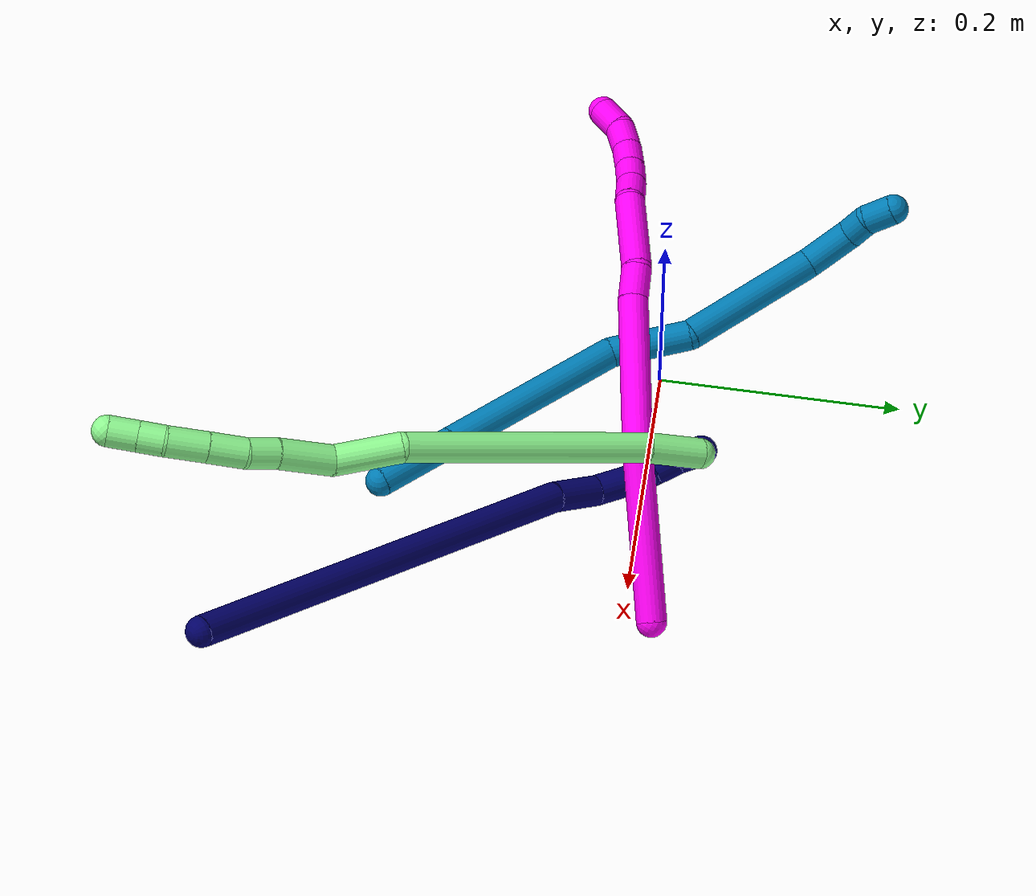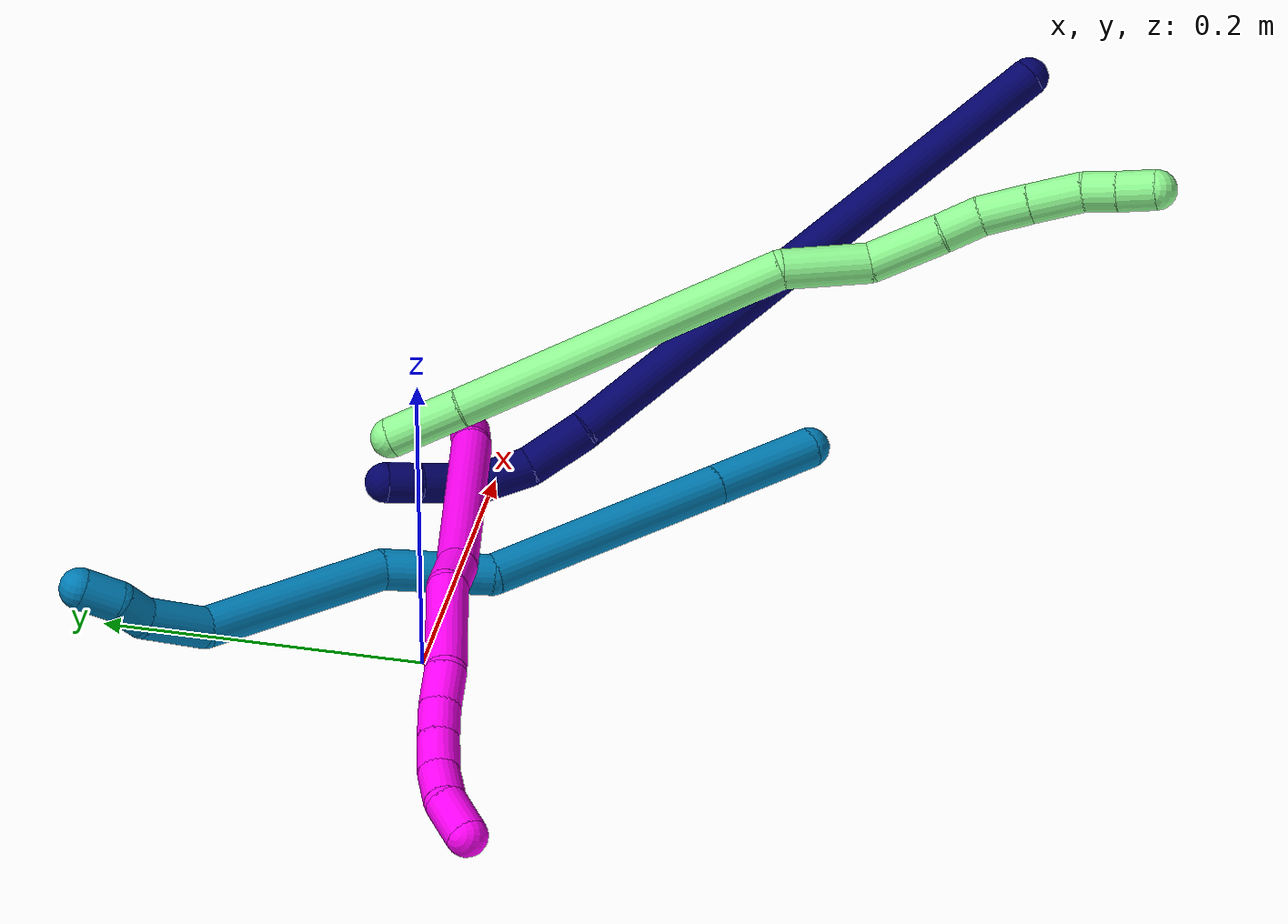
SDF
<sdf version="1.7">
 <world name="default">
  <model name="7">
   <static>0</static>
   <link name="7">
    <collision name="collision-cylinder-e_1_1_4">
     <pose>-0.009765 0.006613 -0.181981 -3.10527 -0.053572 1.95012</pose>
     <geometry><cylinder><radius>0.0125</radius><length>0.364726</length></cylinder></geometry>
     <surface>
      <friction><ode><mu>1.16</mu><mu2>1.16</mu2><slip1>0</slip1><slip2>0</slip2></ode></friction>
      <contact><ode><kp>1e+06</kp><kd>1</kd><max_vel>0</max_vel><min_depth>0.001</min_depth></ode></contact>
     </surface>
    </collision>
    <visual name="visual-cylinder-e_1_1_4">
     <pose>-0.009765 0.006613 -0.181981 -3.10527 -0.053572 1.95012</pose>
     <geometry><cylinder><radius>0.0125</radius><length>0.364726</length></cylinder></geometry>
     <material><ambient>0.003922 0 0.403922 1</ambient></material>
    </visual>
    <collision name="collision-cylinder-e_2_4_5">
     <pose>-0.019445 0.017372 -0.384176 -2.93925 0.004092 -0.040301</pose>
     <geometry><cylinder><radius>0.0125</radius><length>0.041269</length></cylinder></geometry>
     <surface>
      <friction><ode><mu>1.16</mu><mu2>1.16</mu2><slip1>0</slip1><slip2>0</slip2></ode></friction>
      <contact><ode><kp>1e+06</kp><kd>1</kd><max_vel>0</max_vel><min_depth>0.001</min_depth></ode></contact>
     </surface>
    </collision>
    <visual name="visual-cylinder-e_2_4_5">
     <pose>-0.019445 0.017372 -0.384176 -2.93925 0.004092 -0.040301</pose>
     <geometry><cylinder><radius>0.0125</radius><length>0.041269</length></cylinder></geometry>
     <material><ambient>0.003922 0 0.403922 1</ambient></material>
    </visual>
    <collision name="collision-cylinder-e_3_5_6">
     <pose>-0.023936 0.025832 -0.418984 -2.85425 -0.29203 1.58722</pose>
     <geometry><cylinder><radius>0.0125</radius><length>0.031783</length></cylinder></geometry>
     <surface>
      <friction><ode><mu>1.16</mu><mu2>1.16</mu2><slip1>0</slip1><slip2>0</slip2></ode></friction>
      <contact><ode><kp>1e+06</kp><kd>1</kd><max_vel>0</max_vel><min_depth>0.001</min_depth></ode></contact>
     </surface>
    </collision>
    <visual name="visual-cylinder-e_3_5_6">
     <pose>-0.023936 0.025832 -0.418984 -2.85425 -0.29203 1.58722</pose>
     <geometry><cylinder><radius>0.0125</radius><length>0.031783</length></cylinder></geometry>
     <material><ambient>0.003922 0 0.403922 1</ambient></material>
    </visual>
    <collision name="collision-cylinder-e_4_6_7">
     <pose>-0.03447 0.033646 -0.441548 -2.72761 -0.600308 1.94929</pose>
     <geometry><cylinder><radius>0.0125</radius><length>0.021097</length></cylinder></geometry>
     <surface>
      <friction><ode><mu>1.16</mu><mu2>1.16</mu2><slip1>0</slip1><slip2>0</slip2></ode></friction>
      <contact><ode><kp>1e+06</kp><kd>1</kd><max_vel>0</max_vel><min_depth>0.001</min_depth></ode></contact>
     </surface>
    </collision>
    <visual name="visual-cylinder-e_4_6_7">
     <pose>-0.03447 0.033646 -0.441548 -2.72761 -0.600308 1.94929</pose>
     <geometry><cylinder><radius>0.0125</radius><length>0.021097</length></cylinder></geometry>
     <material><ambient>0.003922 0 0.403922 1</ambient></material>
    </visual>
    <collision name="collision-cylinder-e_5_7_8">
     <pose>-0.04657 0.040112 -0.45691 -2.76021 -0.656779 2.11067</pose>
     <geometry><cylinder><radius>0.0125</radius><length>0.020115</length></cylinder></geometry>
     <surface>
      <friction><ode><mu>1.16</mu><mu2>1.16</mu2><slip1>0</slip1><slip2>0</slip2></ode></friction>
      <contact><ode><kp>1e+06</kp><kd>1</kd><max_vel>0</max_vel><min_depth>0.001</min_depth></ode></contact>
     </surface>
    </collision>
    <visual name="visual-cylinder-e_5_7_8">
     <pose>-0.04657 0.040112 -0.45691 -2.76021 -0.656779 2.11067</pose>
     <geometry><cylinder><radius>0.0125</radius><length>0.020115</length></cylinder></geometry>
     <material><ambient>0.003922 0 0.403922 1</ambient></material>
    </visual>
    <collision name="collision-cylinder-e_6_8_2">
     <pose>-0.058392 0.047277 -0.472077 -2.64627 -0.571427 1.72016</pose>
     <geometry><cylinder><radius>0.0125</radius><length>0.02101</length></cylinder></geometry>
     <surface>
      <friction><ode><mu>1.16</mu><mu2>1.16</mu2><slip1>0</slip1><slip2>0</slip2></ode></friction>
      <contact><ode><kp>1e+06</kp><kd>1</kd><max_vel>0</max_vel><min_depth>0.001</min_depth></ode></contact>
     </surface>
    </collision>
    <visual name="visual-cylinder-e_6_8_2">
     <pose>-0.058392 0.047277 -0.472077 -2.64627 -0.571427 1.72016</pose>
     <geometry><cylinder><radius>0.0125</radius><length>0.02101</length></cylinder></geometry>
     <material><ambient>0.003922 0 0.403922 1</ambient></material>
    </visual>
    <collision name="collision-sphere-2">
     <pose>-0.064073 0.051477 -0.479851 0 -0 0</pose>
     <geometry><sphere><radius>0.0125</radius></sphere></geometry>
     <surface>
      <friction><ode><mu>1.16</mu><mu2>1.16</mu2><slip1>0</slip1><slip2>0</slip2></ode></friction>
      <contact><ode><kp>1e+06</kp><kd>1</kd><max_vel>0</max_vel><min_depth>0.001</min_depth></ode></contact>
     </surface>
    </collision>
    <visual name="visual-sphere-2">
     <pose>-0.064073 0.051477 -0.479851 0 -0 0</pose>
     <geometry><sphere><radius>0.0125</radius></sphere></geometry>
     <material><ambient>0.003922 0 0.403922 1</ambient></material>
    </visual>
    <collision name="collision-sphere-4">
     <pose>-0.01953 0.013225 -0.363963 0 -0 0</pose>
     <geometry><sphere><radius>0.0125</radius></sphere></geometry>
     <surface>
      <friction><ode><mu>1.16</mu><mu2>1.16</mu2><slip1>0</slip1><slip2>0</slip2></ode></friction>
      <contact><ode><kp>1e+06</kp><kd>1</kd><max_vel>0</max_vel><min_depth>0.001</min_depth></ode></contact>
     </surface>
    </collision>
    <visual name="visual-sphere-4">
     <pose>-0.01953 0.013225 -0.363963 0 -0 0</pose>
     <geometry><sphere><radius>0.0125</radius></sphere></geometry>
     <material><ambient>0.003922 0 0.403922 1</ambient></material>
    </visual>
    <collision name="collision-sphere-1">
     <geometry><sphere><radius>0.0125</radius></sphere></geometry>
     <surface>
      <friction><ode><mu>1.16</mu><mu2>1.16</mu2><slip1>0</slip1><slip2>0</slip2></ode></friction>
      <contact><ode><kp>1e+06</kp><kd>1</kd><max_vel>0</max_vel><min_depth>0.001</min_depth></ode></contact>
     </surface>
    </collision>
    <visual name="visual-sphere-1">
     <geometry><sphere><radius>0.0125</radius></sphere></geometry>
     <material><ambient>0.003922 0 0.403922 1</ambient></material>
    </visual>
    <collision name="collision-sphere-8">
     <pose>-0.05271 0.043077 -0.464303 0 -0 0</pose>
     <geometry><sphere><radius>0.0125</radius></sphere></geometry>
     <surface>
      <friction><ode><mu>1.16</mu><mu2>1.16</mu2><slip1>0</slip1><slip2>0</slip2></ode></friction>
      <contact><ode><kp>1e+06</kp><kd>1</kd><max_vel>0</max_vel><min_depth>0.001</min_depth></ode></contact>
     </surface>
    </collision>
    <visual name="visual-sphere-8">
     <pose>-0.05271 0.043077 -0.464303 0 -0 0</pose>
     <geometry><sphere><radius>0.0125</radius></sphere></geometry>
     <material><ambient>0.003922 0 0.403922 1</ambient></material>
    </visual>
    <collision name="collision-sphere-5">
     <pose>-0.019361 0.021519 -0.404389 0 -0 0</pose>
     <geometry><sphere><radius>0.0125</radius></sphere></geometry>
     <surface>
      <friction><ode><mu>1.16</mu><mu2>1.16</mu2><slip1>0</slip1><slip2>0</slip2></ode></friction>
      <contact><ode><kp>1e+06</kp><kd>1</kd><max_vel>0</max_vel><min_depth>0.001</min_depth></ode></contact>
     </surface>
    </collision>
    <visual name="visual-sphere-5">
     <pose>-0.019361 0.021519 -0.404389 0 -0 0</pose>
     <geometry><sphere><radius>0.0125</radius></sphere></geometry>
     <material><ambient>0.003922 0 0.403922 1</ambient></material>
    </visual>
    <collision name="collision-sphere-6">
     <pose>-0.028511 0.030145 -0.433579 0 -0 0</pose>
     <geometry><sphere><radius>0.0125</radius></sphere></geometry>
     <surface>
      <friction><ode><mu>1.16</mu><mu2>1.16</mu2><slip1>0</slip1><slip2>0</slip2></ode></friction>
      <contact><ode><kp>1e+06</kp><kd>1</kd><max_vel>0</max_vel><min_depth>0.001</min_depth></ode></contact>
     </surface>
    </collision>
    <visual name="visual-sphere-6">
     <pose>-0.028511 0.030145 -0.433579 0 -0 0</pose>
     <geometry><sphere><radius>0.0125</radius></sphere></geometry>
     <material><ambient>0.003922 0 0.403922 1</ambient></material>
    </visual>
    <collision name="collision-sphere-7">
     <pose>-0.040429 0.037148 -0.449517 0 -0 0</pose>
     <geometry><sphere><radius>0.0125</radius></sphere></geometry>
     <surface>
      <friction><ode><mu>1.16</mu><mu2>1.16</mu2><slip1>0</slip1><slip2>0</slip2></ode></friction>
      <contact><ode><kp>1e+06</kp><kd>1</kd><max_vel>0</max_vel><min_depth>0.001</min_depth></ode></contact>
     </surface>
    </collision>
    <visual name="visual-sphere-7">
     <pose>-0.040429 0.037148 -0.449517 0 -0 0</pose>
     <geometry><sphere><radius>0.0125</radius></sphere></geometry>
     <material><ambient>0.003922 0 0.403922 1</ambient></material>
    </visual>
    <inertial>
     <pose>-0.016031 0.012919 -0.247938 0 -0 0</pose>
     <mass>0.5</mass>
     <inertia>
      <ixx>0.002271</ixx>
      <ixy>0</ixy>
      <ixz>0</ixz>
      <iyy>0.005279</iyy>
      <iyz>0</iyz>
      <izz>3.2e-05</izz>
     </inertia>
    </inertial>
   </link>
   <pose>0.401717 -0.301696 0.215651 0.067528 1.10699 -0.670685</pose>
  </model>
  <model name="9">
   <static>0</static>
   <link name="9">
    <collision name="collision-cylinder-e_1_1_4">
     <pose>-0.023969 0.023732 -0.006398 -1.83414 -0.772826 0.976412</pose>
     <geometry><cylinder><radius>0.0125</radius><length>0.068663</length></cylinder></geometry>
     <surface>
      <friction><ode><mu>1.16</mu><mu2>1.16</mu2><slip1>0</slip1><slip2>0</slip2></ode></friction>
      <contact><ode><kp>1e+06</kp><kd>1</kd><max_vel>0</max_vel><min_depth>0.001</min_depth></ode></contact>
     </surface>
    </collision>
    <visual name="visual-cylinder-e_1_1_4">
     <pose>-0.023969 0.023732 -0.006398 -1.83414 -0.772826 0.976412</pose>
     <geometry><cylinder><radius>0.0125</radius><length>0.068663</length></cylinder></geometry>
     <material><ambient>0 0.490196 0.709804 1</ambient></material>
    </visual>
    <collision name="collision-cylinder-e_2_4_5">
     <pose>-0.103124 0.102087 -0.027537 -1.83438 -0.772953 0.976772</pose>
     <geometry><cylinder><radius>0.0125</radius><length>0.158069</length></cylinder></geometry>
     <surface>
      <friction><ode><mu>1.16</mu><mu2>1.16</mu2><slip1>0</slip1><slip2>0</slip2></ode></friction>
      <contact><ode><kp>1e+06</kp><kd>1</kd><max_vel>0</max_vel><min_depth>0.001</min_depth></ode></contact>
     </surface>
    </collision>
    <visual name="visual-cylinder-e_2_4_5">
     <pose>-0.103124 0.102087 -0.027537 -1.83438 -0.772953 0.976772</pose>
     <geometry><cylinder><radius>0.0125</radius><length>0.158069</length></cylinder></geometry>
     <material><ambient>0 0.490196 0.709804 1</ambient></material>
    </visual>
    <collision name="collision-cylinder-e_3_5_6">
     <pose>-0.169786 0.188168 -0.042179 -1.56769 -0.349818 0.348754</pose>
     <geometry><cylinder><radius>0.0125</radius><length>0.066972</length></cylinder></geometry>
     <surface>
      <friction><ode><mu>1.16</mu><mu2>1.16</mu2><slip1>0</slip1><slip2>0</slip2></ode></friction>
      <contact><ode><kp>1e+06</kp><kd>1</kd><max_vel>0</max_vel><min_depth>0.001</min_depth></ode></contact>
     </surface>
    </collision>
    <visual name="visual-cylinder-e_3_5_6">
     <pose>-0.169786 0.188168 -0.042179 -1.56769 -0.349818 0.348754</pose>
     <geometry><cylinder><radius>0.0125</radius><length>0.066972</length></cylinder></geometry>
     <material><ambient>0 0.490196 0.709804 1</ambient></material>
    </visual>
    <collision name="collision-cylinder-e_4_6_7">
     <pose>-0.223466 0.261632 -0.049074 -1.73574 -0.780895 0.90437</pose>
     <geometry><cylinder><radius>0.0125</radius><length>0.119909</length></cylinder></geometry>
     <surface>
      <friction><ode><mu>1.16</mu><mu2>1.16</mu2><slip1>0</slip1><slip2>0</slip2></ode></friction>
      <contact><ode><kp>1e+06</kp><kd>1</kd><max_vel>0</max_vel><min_depth>0.001</min_depth></ode></contact>
     </surface>
    </collision>
    <visual name="visual-cylinder-e_4_6_7">
     <pose>-0.223466 0.261632 -0.049074 -1.73574 -0.780895 0.90437</pose>
     <geometry><cylinder><radius>0.0125</radius><length>0.119909</length></cylinder></geometry>
     <material><ambient>0 0.490196 0.709804 1</ambient></material>
    </visual>
    <collision name="collision-cylinder-e_5_7_8">
     <pose>-0.277711 0.319695 -0.049641 -1.19013 -0.608233 0.418677</pose>
     <geometry><cylinder><radius>0.0125</radius><length>0.042148</length></cylinder></geometry>
     <surface>
      <friction><ode><mu>1.16</mu><mu2>1.16</mu2><slip1>0</slip1><slip2>0</slip2></ode></friction>
      <contact><ode><kp>1e+06</kp><kd>1</kd><max_vel>0</max_vel><min_depth>0.001</min_depth></ode></contact>
     </surface>
    </collision>
    <visual name="visual-cylinder-e_5_7_8">
     <pose>-0.277711 0.319695 -0.049641 -1.19013 -0.608233 0.418677</pose>
     <geometry><cylinder><radius>0.0125</radius><length>0.042148</length></cylinder></geometry>
     <material><ambient>0 0.490196 0.709804 1</ambient></material>
    </visual>
    <collision name="collision-cylinder-e_6_8_9">
     <pose>-0.293532 0.342733 -0.037122 -0.853208 -0.387229 0.177765</pose>
     <geometry><cylinder><radius>0.0125</radius><length>0.020014</length></cylinder></geometry>
     <surface>
      <friction><ode><mu>1.16</mu><mu2>1.16</mu2><slip1>0</slip1><slip2>0</slip2></ode></friction>
      <contact><ode><kp>1e+06</kp><kd>1</kd><max_vel>0</max_vel><min_depth>0.001</min_depth></ode></contact>
     </surface>
    </collision>
    <visual name="visual-cylinder-e_6_8_9">
     <pose>-0.293532 0.342733 -0.037122 -0.853208 -0.387229 0.177765</pose>
     <geometry><cylinder><radius>0.0125</radius><length>0.020014</length></cylinder></geometry>
     <material><ambient>0 0.490196 0.709804 1</ambient></material>
    </visual>
    <collision name="collision-cylinder-e_7_9_2">
     <pose>-0.301159 0.360544 -0.027205 -1.23139 -0.323285 0.2297</pose>
     <geometry><cylinder><radius>0.0125</radius><length>0.024225</length></cylinder></geometry>
     <surface>
      <friction><ode><mu>1.16</mu><mu2>1.16</mu2><slip1>0</slip1><slip2>0</slip2></ode></friction>
      <contact><ode><kp>1e+06</kp><kd>1</kd><max_vel>0</max_vel><min_depth>0.001</min_depth></ode></contact>
     </surface>
    </collision>
    <visual name="visual-cylinder-e_7_9_2">
     <pose>-0.301159 0.360544 -0.027205 -1.23139 -0.323285 0.2297</pose>
     <geometry><cylinder><radius>0.0125</radius><length>0.024225</length></cylinder></geometry>
     <material><ambient>0 0.490196 0.709804 1</ambient></material>
    </visual>
    <collision name="collision-sphere-2">
     <pose>-0.305007 0.371374 -0.023382 0 -0 0</pose>
     <geometry><sphere><radius>0.0125</radius></sphere></geometry>
     <surface>
      <friction><ode><mu>1.16</mu><mu2>1.16</mu2><slip1>0</slip1><slip2>0</slip2></ode></friction>
      <contact><ode><kp>1e+06</kp><kd>1</kd><max_vel>0</max_vel><min_depth>0.001</min_depth></ode></contact>
     </surface>
    </collision>
    <visual name="visual-sphere-2">
     <pose>-0.305007 0.371374 -0.023382 0 -0 0</pose>
     <geometry><sphere><radius>0.0125</radius></sphere></geometry>
     <material><ambient>0 0.490196 0.709804 1</ambient></material>
    </visual>
    <collision name="collision-sphere-9">
     <pose>-0.297311 0.349714 -0.031029 0 -0 0</pose>
     <geometry><sphere><radius>0.0125</radius></sphere></geometry>
     <surface>
      <friction><ode><mu>1.16</mu><mu2>1.16</mu2><slip1>0</slip1><slip2>0</slip2></ode></friction>
      <contact><ode><kp>1e+06</kp><kd>1</kd><max_vel>0</max_vel><min_depth>0.001</min_depth></ode></contact>
     </surface>
    </collision>
    <visual name="visual-sphere-9">
     <pose>-0.297311 0.349714 -0.031029 0 -0 0</pose>
     <geometry><sphere><radius>0.0125</radius></sphere></geometry>
     <material><ambient>0 0.490196 0.709804 1</ambient></material>
    </visual>
    <collision name="collision-sphere-4">
     <pose>-0.047938 0.047464 -0.012796 0 -0 0</pose>
     <geometry><sphere><radius>0.0125</radius></sphere></geometry>
     <surface>
      <friction><ode><mu>1.16</mu><mu2>1.16</mu2><slip1>0</slip1><slip2>0</slip2></ode></friction>
      <contact><ode><kp>1e+06</kp><kd>1</kd><max_vel>0</max_vel><min_depth>0.001</min_depth></ode></contact>
     </surface>
    </collision>
    <visual name="visual-sphere-4">
     <pose>-0.047938 0.047464 -0.012796 0 -0 0</pose>
     <geometry><sphere><radius>0.0125</radius></sphere></geometry>
     <material><ambient>0 0.490196 0.709804 1</ambient></material>
    </visual>
    <collision name="collision-sphere-1">
     <geometry><sphere><radius>0.0125</radius></sphere></geometry>
     <surface>
      <friction><ode><mu>1.16</mu><mu2>1.16</mu2><slip1>0</slip1><slip2>0</slip2></ode></friction>
      <contact><ode><kp>1e+06</kp><kd>1</kd><max_vel>0</max_vel><min_depth>0.001</min_depth></ode></contact>
     </surface>
    </collision>
    <visual name="visual-sphere-1">
     <geometry><sphere><radius>0.0125</radius></sphere></geometry>
     <material><ambient>0 0.490196 0.709804 1</ambient></material>
    </visual>
    <collision name="collision-sphere-8">
     <pose>-0.289753 0.335752 -0.043215 0 -0 0</pose>
     <geometry><sphere><radius>0.0125</radius></sphere></geometry>
     <surface>
      <friction><ode><mu>1.16</mu><mu2>1.16</mu2><slip1>0</slip1><slip2>0</slip2></ode></friction>
      <contact><ode><kp>1e+06</kp><kd>1</kd><max_vel>0</max_vel><min_depth>0.001</min_depth></ode></contact>
     </surface>
    </collision>
    <visual name="visual-sphere-8">
     <pose>-0.289753 0.335752 -0.043215 0 -0 0</pose>
     <geometry><sphere><radius>0.0125</radius></sphere></geometry>
     <material><ambient>0 0.490196 0.709804 1</ambient></material>
    </visual>
    <collision name="collision-sphere-5">
     <pose>-0.15831 0.15671 -0.042277 0 -0 0</pose>
     <geometry><sphere><radius>0.0125</radius></sphere></geometry>
     <surface>
      <friction><ode><mu>1.16</mu><mu2>1.16</mu2><slip1>0</slip1><slip2>0</slip2></ode></friction>
      <contact><ode><kp>1e+06</kp><kd>1</kd><max_vel>0</max_vel><min_depth>0.001</min_depth></ode></contact>
     </surface>
    </collision>
    <visual name="visual-sphere-5">
     <pose>-0.15831 0.15671 -0.042277 0 -0 0</pose>
     <geometry><sphere><radius>0.0125</radius></sphere></geometry>
     <material><ambient>0 0.490196 0.709804 1</ambient></material>
    </visual>
    <collision name="collision-sphere-6">
     <pose>-0.181263 0.219625 -0.042082 0 -0 0</pose>
     <geometry><sphere><radius>0.0125</radius></sphere></geometry>
     <surface>
      <friction><ode><mu>1.16</mu><mu2>1.16</mu2><slip1>0</slip1><slip2>0</slip2></ode></friction>
      <contact><ode><kp>1e+06</kp><kd>1</kd><max_vel>0</max_vel><min_depth>0.001</min_depth></ode></contact>
     </surface>
    </collision>
    <visual name="visual-sphere-6">
     <pose>-0.181263 0.219625 -0.042082 0 -0 0</pose>
     <geometry><sphere><radius>0.0125</radius></sphere></geometry>
     <material><ambient>0 0.490196 0.709804 1</ambient></material>
    </visual>
    <collision name="collision-sphere-7">
     <pose>-0.265669 0.303639 -0.056067 0 -0 0</pose>
     <geometry><sphere><radius>0.0125</radius></sphere></geometry>
     <surface>
      <friction><ode><mu>1.16</mu><mu2>1.16</mu2><slip1>0</slip1><slip2>0</slip2></ode></friction>
      <contact><ode><kp>1e+06</kp><kd>1</kd><max_vel>0</max_vel><min_depth>0.001</min_depth></ode></contact>
     </surface>
    </collision>
    <visual name="visual-sphere-7">
     <pose>-0.265669 0.303639 -0.056067 0 -0 0</pose>
     <geometry><sphere><radius>0.0125</radius></sphere></geometry>
     <material><ambient>0 0.490196 0.709804 1</ambient></material>
    </visual>
    <inertial>
     <pose>-0.161976 0.181617 -0.033991 0 -0 0</pose>
     <mass>0.5</mass>
     <inertia>
      <ixx>0.000533</ixx>
      <ixy>0</ixy>
      <ixz>0</ixz>
      <iyy>0.000567</iyy>
      <iyz>0</iyz>
      <izz>-1.8e-05</izz>
     </inertia>
    </inertial>
   </link>
   <pose>0.171027 -0.205351 0.072927 0.119191 0.066629 -0.029241</pose>
  </model>
  <model name="10">
   <static>0</static>
   <link name="10">
    <collision name="collision-cylinder-e_1_1_4">
     <pose>-0.012464 -0.03831 0.055014 0.608283 -0.183831 -0.057848</pose>
     <geometry><cylinder><radius>0.0125</radius><length>0.136374</length></cylinder></geometry>
     <surface>
      <friction><ode><mu>1.16</mu><mu2>1.16</mu2><slip1>0</slip1><slip2>0</slip2></ode></friction>
      <contact><ode><kp>1e+06</kp><kd>1</kd><max_vel>0</max_vel><min_depth>0.001</min_depth></ode></contact>
     </surface>
    </collision>
    <visual name="visual-cylinder-e_1_1_4">
     <pose>-0.012464 -0.03831 0.055014 0.608283 -0.183831 -0.057848</pose>
     <geometry><cylinder><radius>0.0125</radius><length>0.136374</length></cylinder></geometry>
     <material><ambient>1 0 0.964706 1</ambient></material>
    </visual>
    <collision name="collision-cylinder-e_2_4_5">
     <pose>-0.067617 -0.105811 0.157619 0.550206 -0.652773 -0.190508</pose>
     <geometry><cylinder><radius>0.0125</radius><length>0.140562</length></cylinder></geometry>
     <surface>
      <friction><ode><mu>1.16</mu><mu2>1.16</mu2><slip1>0</slip1><slip2>0</slip2></ode></friction>
      <contact><ode><kp>1e+06</kp><kd>1</kd><max_vel>0</max_vel><min_depth>0.001</min_depth></ode></contact>
     </surface>
    </collision>
    <visual name="visual-cylinder-e_2_4_5">
     <pose>-0.067617 -0.105811 0.157619 0.550206 -0.652773 -0.190508</pose>
     <geometry><cylinder><radius>0.0125</radius><length>0.140562</length></cylinder></geometry>
     <material><ambient>1 0 0.964706 1</ambient></material>
    </visual>
    <collision name="collision-cylinder-e_3_5_6">
     <pose>-0.117966 -0.13973 0.216427 0.398786 -0.561758 -0.11647</pose>
     <geometry><cylinder><radius>0.0125</radius><length>0.028764</length></cylinder></geometry>
     <surface>
      <friction><ode><mu>1.16</mu><mu2>1.16</mu2><slip1>0</slip1><slip2>0</slip2></ode></friction>
      <contact><ode><kp>1e+06</kp><kd>1</kd><max_vel>0</max_vel><min_depth>0.001</min_depth></ode></contact>
     </surface>
    </collision>
    <visual name="visual-cylinder-e_3_5_6">
     <pose>-0.117966 -0.13973 0.216427 0.398786 -0.561758 -0.11647</pose>
     <geometry><cylinder><radius>0.0125</radius><length>0.028764</length></cylinder></geometry>
     <material><ambient>1 0 0.964706 1</ambient></material>
    </visual>
    <collision name="collision-cylinder-e_4_6_7">
     <pose>-0.152114 -0.158625 0.247274 0.6252 -0.830284 -0.282999</pose>
     <geometry><cylinder><radius>0.0125</radius><length>0.07177</length></cylinder></geometry>
     <surface>
      <friction><ode><mu>1.16</mu><mu2>1.16</mu2><slip1>0</slip1><slip2>0</slip2></ode></friction>
      <contact><ode><kp>1e+06</kp><kd>1</kd><max_vel>0</max_vel><min_depth>0.001</min_depth></ode></contact>
     </surface>
    </collision>
    <visual name="visual-cylinder-e_4_6_7">
     <pose>-0.152114 -0.158625 0.247274 0.6252 -0.830284 -0.282999</pose>
     <geometry><cylinder><radius>0.0125</radius><length>0.07177</length></cylinder></geometry>
     <material><ambient>1 0 0.964706 1</ambient></material>
    </visual>
    <collision name="collision-cylinder-e_5_7_8">
     <pose>-0.189829 -0.174861 0.272061 0.38118 -1.11131 -0.238452</pose>
     <geometry><cylinder><radius>0.0125</radius><length>0.025053</length></cylinder></geometry>
     <surface>
      <friction><ode><mu>1.16</mu><mu2>1.16</mu2><slip1>0</slip1><slip2>0</slip2></ode></friction>
      <contact><ode><kp>1e+06</kp><kd>1</kd><max_vel>0</max_vel><min_depth>0.001</min_depth></ode></contact>
     </surface>
    </collision>
    <visual name="visual-cylinder-e_5_7_8">
     <pose>-0.189829 -0.174861 0.272061 0.38118 -1.11131 -0.238452</pose>
     <geometry><cylinder><radius>0.0125</radius><length>0.025053</length></cylinder></geometry>
     <material><ambient>1 0 0.964706 1</ambient></material>
    </visual>
    <collision name="collision-cylinder-e_6_8_9">
     <pose>-0.210474 -0.179986 0.281763 0.592394 -1.04396 -0.347529</pose>
     <geometry><cylinder><radius>0.0125</radius><length>0.021791</length></cylinder></geometry>
     <surface>
      <friction><ode><mu>1.16</mu><mu2>1.16</mu2><slip1>0</slip1><slip2>0</slip2></ode></friction>
      <contact><ode><kp>1e+06</kp><kd>1</kd><max_vel>0</max_vel><min_depth>0.001</min_depth></ode></contact>
     </surface>
    </collision>
    <visual name="visual-cylinder-e_6_8_9">
     <pose>-0.210474 -0.179986 0.281763 0.592394 -1.04396 -0.347529</pose>
     <geometry><cylinder><radius>0.0125</radius><length>0.021791</length></cylinder></geometry>
     <material><ambient>1 0 0.964706 1</ambient></material>
    </visual>
    <collision name="collision-cylinder-e_7_9_10">
     <pose>-0.230124 -0.187286 0.291394 0.695003 -0.996434 -0.389081</pose>
     <geometry><cylinder><radius>0.0125</radius><length>0.024378</length></cylinder></geometry>
     <surface>
      <friction><ode><mu>1.16</mu><mu2>1.16</mu2><slip1>0</slip1><slip2>0</slip2></ode></friction>
      <contact><ode><kp>1e+06</kp><kd>1</kd><max_vel>0</max_vel><min_depth>0.001</min_depth></ode></contact>
     </surface>
    </collision>
    <visual name="visual-cylinder-e_7_9_10">
     <pose>-0.230124 -0.187286 0.291394 0.695003 -0.996434 -0.389081</pose>
     <geometry><cylinder><radius>0.0125</radius><length>0.024378</length></cylinder></geometry>
     <material><ambient>1 0 0.964706 1</ambient></material>
    </visual>
    <collision name="collision-cylinder-e_8_10_11">
     <pose>-0.248956 -0.197939 0.301936 0.86574 -0.795905 -0.383737</pose>
     <geometry><cylinder><radius>0.0125</radius><length>0.024069</length></cylinder></geometry>
     <surface>
      <friction><ode><mu>1.16</mu><mu2>1.16</mu2><slip1>0</slip1><slip2>0</slip2></ode></friction>
      <contact><ode><kp>1e+06</kp><kd>1</kd><max_vel>0</max_vel><min_depth>0.001</min_depth></ode></contact>
     </surface>
    </collision>
    <visual name="visual-cylinder-e_8_10_11">
     <pose>-0.248956 -0.197939 0.301936 0.86574 -0.795905 -0.383737</pose>
     <geometry><cylinder><radius>0.0125</radius><length>0.024069</length></cylinder></geometry>
     <material><ambient>1 0 0.964706 1</ambient></material>
    </visual>
    <collision name="collision-cylinder-e_9_11_2">
     <pose>-0.267436 -0.213539 0.30925 1.37139 -0.81177 -0.676179</pose>
     <geometry><cylinder><radius>0.0125</radius><length>0.027241</length></cylinder></geometry>
     <surface>
      <friction><ode><mu>1.16</mu><mu2>1.16</mu2><slip1>0</slip1><slip2>0</slip2></ode></friction>
      <contact><ode><kp>1e+06</kp><kd>1</kd><max_vel>0</max_vel><min_depth>0.001</min_depth></ode></contact>
     </surface>
    </collision>
    <visual name="visual-cylinder-e_9_11_2">
     <pose>-0.267436 -0.213539 0.30925 1.37139 -0.81177 -0.676179</pose>
     <geometry><cylinder><radius>0.0125</radius><length>0.027241</length></cylinder></geometry>
     <material><ambient>1 0 0.964706 1</ambient></material>
    </visual>
    <collision name="collision-sphere-2">
     <pose>-0.277318 -0.222727 0.311107 0 -0 0</pose>
     <geometry><sphere><radius>0.0125</radius></sphere></geometry>
     <surface>
      <friction><ode><mu>1.16</mu><mu2>1.16</mu2><slip1>0</slip1><slip2>0</slip2></ode></friction>
      <contact><ode><kp>1e+06</kp><kd>1</kd><max_vel>0</max_vel><min_depth>0.001</min_depth></ode></contact>
     </surface>
    </collision>
    <visual name="visual-sphere-2">
     <pose>-0.277318 -0.222727 0.311107 0 -0 0</pose>
     <geometry><sphere><radius>0.0125</radius></sphere></geometry>
     <material><ambient>1 0 0.964706 1</ambient></material>
    </visual>
    <collision name="collision-sphere-11">
     <pose>-0.257555 -0.204351 0.307393 0 -0 0</pose>
     <geometry><sphere><radius>0.0125</radius></sphere></geometry>
     <surface>
      <friction><ode><mu>1.16</mu><mu2>1.16</mu2><slip1>0</slip1><slip2>0</slip2></ode></friction>
      <contact><ode><kp>1e+06</kp><kd>1</kd><max_vel>0</max_vel><min_depth>0.001</min_depth></ode></contact>
     </surface>
    </collision>
    <visual name="visual-sphere-11">
     <pose>-0.257555 -0.204351 0.307393 0 -0 0</pose>
     <geometry><sphere><radius>0.0125</radius></sphere></geometry>
     <material><ambient>1 0 0.964706 1</ambient></material>
    </visual>
    <collision name="collision-sphere-10">
     <pose>-0.240357 -0.191527 0.29648 0 -0 0</pose>
     <geometry><sphere><radius>0.0125</radius></sphere></geometry>
     <surface>
      <friction><ode><mu>1.16</mu><mu2>1.16</mu2><slip1>0</slip1><slip2>0</slip2></ode></friction>
      <contact><ode><kp>1e+06</kp><kd>1</kd><max_vel>0</max_vel><min_depth>0.001</min_depth></ode></contact>
     </surface>
    </collision>
    <visual name="visual-sphere-10">
     <pose>-0.240357 -0.191527 0.29648 0 -0 0</pose>
     <geometry><sphere><radius>0.0125</radius></sphere></geometry>
     <material><ambient>1 0 0.964706 1</ambient></material>
    </visual>
    <collision name="collision-sphere-9">
     <pose>-0.219891 -0.183045 0.286307 0 -0 0</pose>
     <geometry><sphere><radius>0.0125</radius></sphere></geometry>
     <surface>
      <friction><ode><mu>1.16</mu><mu2>1.16</mu2><slip1>0</slip1><slip2>0</slip2></ode></friction>
      <contact><ode><kp>1e+06</kp><kd>1</kd><max_vel>0</max_vel><min_depth>0.001</min_depth></ode></contact>
     </surface>
    </collision>
    <visual name="visual-sphere-9">
     <pose>-0.219891 -0.183045 0.286307 0 -0 0</pose>
     <geometry><sphere><radius>0.0125</radius></sphere></geometry>
     <material><ambient>1 0 0.964706 1</ambient></material>
    </visual>
    <collision name="collision-sphere-4">
     <pose>-0.024929 -0.076619 0.110027 0 -0 0</pose>
     <geometry><sphere><radius>0.0125</radius></sphere></geometry>
     <surface>
      <friction><ode><mu>1.16</mu><mu2>1.16</mu2><slip1>0</slip1><slip2>0</slip2></ode></friction>
      <contact><ode><kp>1e+06</kp><kd>1</kd><max_vel>0</max_vel><min_depth>0.001</min_depth></ode></contact>
     </surface>
    </collision>
    <visual name="visual-sphere-4">
     <pose>-0.024929 -0.076619 0.110027 0 -0 0</pose>
     <geometry><sphere><radius>0.0125</radius></sphere></geometry>
     <material><ambient>1 0 0.964706 1</ambient></material>
    </visual>
    <collision name="collision-sphere-1">
     <geometry><sphere><radius>0.0125</radius></sphere></geometry>
     <surface>
      <friction><ode><mu>1.16</mu><mu2>1.16</mu2><slip1>0</slip1><slip2>0</slip2></ode></friction>
      <contact><ode><kp>1e+06</kp><kd>1</kd><max_vel>0</max_vel><min_depth>0.001</min_depth></ode></contact>
     </surface>
    </collision>
    <visual name="visual-sphere-1">
     <geometry><sphere><radius>0.0125</radius></sphere></geometry>
     <material><ambient>1 0 0.964706 1</ambient></material>
    </visual>
    <collision name="collision-sphere-8">
     <pose>-0.201056 -0.176928 0.277218 0 -0 0</pose>
     <geometry><sphere><radius>0.0125</radius></sphere></geometry>
     <surface>
      <friction><ode><mu>1.16</mu><mu2>1.16</mu2><slip1>0</slip1><slip2>0</slip2></ode></friction>
      <contact><ode><kp>1e+06</kp><kd>1</kd><max_vel>0</max_vel><min_depth>0.001</min_depth></ode></contact>
     </surface>
    </collision>
    <visual name="visual-sphere-8">
     <pose>-0.201056 -0.176928 0.277218 0 -0 0</pose>
     <geometry><sphere><radius>0.0125</radius></sphere></geometry>
     <material><ambient>1 0 0.964706 1</ambient></material>
    </visual>
    <collision name="collision-sphere-5">
     <pose>-0.110305 -0.135003 0.20521 0 -0 0</pose>
     <geometry><sphere><radius>0.0125</radius></sphere></geometry>
     <surface>
      <friction><ode><mu>1.16</mu><mu2>1.16</mu2><slip1>0</slip1><slip2>0</slip2></ode></friction>
      <contact><ode><kp>1e+06</kp><kd>1</kd><max_vel>0</max_vel><min_depth>0.001</min_depth></ode></contact>
     </surface>
    </collision>
    <visual name="visual-sphere-5">
     <pose>-0.110305 -0.135003 0.20521 0 -0 0</pose>
     <geometry><sphere><radius>0.0125</radius></sphere></geometry>
     <material><ambient>1 0 0.964706 1</ambient></material>
    </visual>
    <collision name="collision-sphere-6">
     <pose>-0.125627 -0.144456 0.227643 0 -0 0</pose>
     <geometry><sphere><radius>0.0125</radius></sphere></geometry>
     <surface>
      <friction><ode><mu>1.16</mu><mu2>1.16</mu2><slip1>0</slip1><slip2>0</slip2></ode></friction>
      <contact><ode><kp>1e+06</kp><kd>1</kd><max_vel>0</max_vel><min_depth>0.001</min_depth></ode></contact>
     </surface>
    </collision>
    <visual name="visual-sphere-6">
     <pose>-0.125627 -0.144456 0.227643 0 -0 0</pose>
     <geometry><sphere><radius>0.0125</radius></sphere></geometry>
     <material><ambient>1 0 0.964706 1</ambient></material>
    </visual>
    <collision name="collision-sphere-7">
     <pose>-0.178601 -0.172794 0.266905 0 -0 0</pose>
     <geometry><sphere><radius>0.0125</radius></sphere></geometry>
     <surface>
      <friction><ode><mu>1.16</mu><mu2>1.16</mu2><slip1>0</slip1><slip2>0</slip2></ode></friction>
      <contact><ode><kp>1e+06</kp><kd>1</kd><max_vel>0</max_vel><min_depth>0.001</min_depth></ode></contact>
     </surface>
    </collision>
    <visual name="visual-sphere-7">
     <pose>-0.178601 -0.172794 0.266905 0 -0 0</pose>
     <geometry><sphere><radius>0.0125</radius></sphere></geometry>
     <material><ambient>1 0 0.964706 1</ambient></material>
    </visual>
    <inertial>
     <pose>-0.107487 -0.117901 0.178761 0 -0 0</pose>
     <mass>0.5</mass>
     <inertia>
      <ixx>0.000349</ixx>
      <ixy>0</ixy>
      <ixz>0</ixz>
      <iyy>0.000359</iyy>
      <iyz>0</iyz>
      <izz>0.000482</izz>
     </inertia>
    </inertial>
   </link>
   <pose>0.234031 0.023979 0.011328 -0.523755 -0.855498 0.14261</pose>
  </model>
  <model name="13">
   <static>0</static>
   <link name="13">
    <collision name="collision-cylinder-e_1_1_4">
     <pose>-0.015379 0.012007 -0.013621 -2.41908 -0.702744 1.54056</pose>
     <geometry><cylinder><radius>0.0125</radius><length>0.047591</length></cylinder></geometry>
     <surface>
      <friction><ode><mu>1.16</mu><mu2>1.16</mu2><slip1>0</slip1><slip2>0</slip2></ode></friction>
      <contact><ode><kp>1e+06</kp><kd>1</kd><max_vel>0</max_vel><min_depth>0.001</min_depth></ode></contact>
     </surface>
    </collision>
    <visual name="visual-cylinder-e_1_1_4">
     <pose>-0.015379 0.012007 -0.013621 -2.41908 -0.702744 1.54056</pose>
     <geometry><cylinder><radius>0.0125</radius><length>0.047591</length></cylinder></geometry>
     <material><ambient>0.564706 0.984314 0.572549 1</ambient></material>
    </visual>
    <collision name="collision-cylinder-e_2_4_5">
     <pose>-0.098358 0.070719 -0.095686 -2.54279 -0.684309 1.71339</pose>
     <geometry><cylinder><radius>0.0125</radius><length>0.213874</length></cylinder></geometry>
     <surface>
      <friction><ode><mu>1.16</mu><mu2>1.16</mu2><slip1>0</slip1><slip2>0</slip2></ode></friction>
      <contact><ode><kp>1e+06</kp><kd>1</kd><max_vel>0</max_vel><min_depth>0.001</min_depth></ode></contact>
     </surface>
    </collision>
    <visual name="visual-cylinder-e_2_4_5">
     <pose>-0.098358 0.070719 -0.095686 -2.54279 -0.684309 1.71339</pose>
     <geometry><cylinder><radius>0.0125</radius><length>0.213874</length></cylinder></geometry>
     <material><ambient>0.564706 0.984314 0.572549 1</ambient></material>
    </visual>
    <collision name="collision-cylinder-e_3_5_6">
     <pose>-0.174244 0.130319 -0.187275 -2.63331 -0.30315 1.06316</pose>
     <geometry><cylinder><radius>0.0125</radius><length>0.055523</length></cylinder></geometry>
     <surface>
      <friction><ode><mu>1.16</mu><mu2>1.16</mu2><slip1>0</slip1><slip2>0</slip2></ode></friction>
      <contact><ode><kp>1e+06</kp><kd>1</kd><max_vel>0</max_vel><min_depth>0.001</min_depth></ode></contact>
     </surface>
    </collision>
    <visual name="visual-cylinder-e_3_5_6">
     <pose>-0.174244 0.130319 -0.187275 -2.63331 -0.30315 1.06316</pose>
     <geometry><cylinder><radius>0.0125</radius><length>0.055523</length></cylinder></geometry>
     <material><ambient>0.564706 0.984314 0.572549 1</ambient></material>
    </visual>
    <collision name="collision-cylinder-e_4_6_7">
     <pose>-0.197897 0.155679 -0.223845 -2.39321 -0.697943 1.49462</pose>
     <geometry><cylinder><radius>0.0125</radius><length>0.047819</length></cylinder></geometry>
     <surface>
      <friction><ode><mu>1.16</mu><mu2>1.16</mu2><slip1>0</slip1><slip2>0</slip2></ode></friction>
      <contact><ode><kp>1e+06</kp><kd>1</kd><max_vel>0</max_vel><min_depth>0.001</min_depth></ode></contact>
     </surface>
    </collision>
    <visual name="visual-cylinder-e_4_6_7">
     <pose>-0.197897 0.155679 -0.223845 -2.39321 -0.697943 1.49462</pose>
     <geometry><cylinder><radius>0.0125</radius><length>0.047819</length></cylinder></geometry>
     <material><ambient>0.564706 0.984314 0.572549 1</ambient></material>
    </visual>
    <collision name="collision-cylinder-e_5_7_8">
     <pose>-0.221529 0.173737 -0.245453 -2.54207 -0.695121 1.72893</pose>
     <geometry><cylinder><radius>0.0125</radius><length>0.025815</length></cylinder></geometry>
     <surface>
      <friction><ode><mu>1.16</mu><mu2>1.16</mu2><slip1>0</slip1><slip2>0</slip2></ode></friction>
      <contact><ode><kp>1e+06</kp><kd>1</kd><max_vel>0</max_vel><min_depth>0.001</min_depth></ode></contact>
     </surface>
    </collision>
    <visual name="visual-cylinder-e_5_7_8">
     <pose>-0.221529 0.173737 -0.245453 -2.54207 -0.695121 1.72893</pose>
     <geometry><cylinder><radius>0.0125</radius><length>0.025815</length></cylinder></geometry>
     <material><ambient>0.564706 0.984314 0.572549 1</ambient></material>
    </visual>
    <collision name="collision-cylinder-e_6_8_9">
     <pose>-0.238092 0.189003 -0.262642 -2.32047 -0.560591 1.16859</pose>
     <geometry><cylinder><radius>0.0125</radius><length>0.031208</length></cylinder></geometry>
     <surface>
      <friction><ode><mu>1.16</mu><mu2>1.16</mu2><slip1>0</slip1><slip2>0</slip2></ode></friction>
      <contact><ode><kp>1e+06</kp><kd>1</kd><max_vel>0</max_vel><min_depth>0.001</min_depth></ode></contact>
     </surface>
    </collision>
    <visual name="visual-cylinder-e_6_8_9">
     <pose>-0.238092 0.189003 -0.262642 -2.32047 -0.560591 1.16859</pose>
     <geometry><cylinder><radius>0.0125</radius><length>0.031208</length></cylinder></geometry>
     <material><ambient>0.564706 0.984314 0.572549 1</ambient></material>
    </visual>
    <collision name="collision-cylinder-e_7_9_10">
     <pose>-0.254917 0.209154 -0.281435 -2.32214 -0.536541 1.1286</pose>
     <geometry><cylinder><radius>0.0125</radius><length>0.033367</length></cylinder></geometry>
     <surface>
      <friction><ode><mu>1.16</mu><mu2>1.16</mu2><slip1>0</slip1><slip2>0</slip2></ode></friction>
      <contact><ode><kp>1e+06</kp><kd>1</kd><max_vel>0</max_vel><min_depth>0.001</min_depth></ode></contact>
     </surface>
    </collision>
    <visual name="visual-cylinder-e_7_9_10">
     <pose>-0.254917 0.209154 -0.281435 -2.32214 -0.536541 1.1286</pose>
     <geometry><cylinder><radius>0.0125</radius><length>0.033367</length></cylinder></geometry>
     <material><ambient>0.564706 0.984314 0.572549 1</ambient></material>
    </visual>
    <collision name="collision-cylinder-e_8_10_11">
     <pose>-0.266874 0.227303 -0.297368 -2.24621 -0.335679 0.678393</pose>
     <geometry><cylinder><radius>0.0125</radius><length>0.020818</length></cylinder></geometry>
     <surface>
      <friction><ode><mu>1.16</mu><mu2>1.16</mu2><slip1>0</slip1><slip2>0</slip2></ode></friction>
      <contact><ode><kp>1e+06</kp><kd>1</kd><max_vel>0</max_vel><min_depth>0.001</min_depth></ode></contact>
     </surface>
    </collision>
    <visual name="visual-cylinder-e_8_10_11">
     <pose>-0.266874 0.227303 -0.297368 -2.24621 -0.335679 0.678393</pose>
     <geometry><cylinder><radius>0.0125</radius><length>0.020818</length></cylinder></geometry>
     <material><ambient>0.564706 0.984314 0.572549 1</ambient></material>
    </visual>
    <collision name="collision-cylinder-e_9_11_2">
     <pose>-0.274655 0.243623 -0.310588 -2.25638 -0.371435 0.754802</pose>
     <geometry><cylinder><radius>0.0125</radius><length>0.023986</length></cylinder></geometry>
     <surface>
      <friction><ode><mu>1.16</mu><mu2>1.16</mu2><slip1>0</slip1><slip2>0</slip2></ode></friction>
      <contact><ode><kp>1e+06</kp><kd>1</kd><max_vel>0</max_vel><min_depth>0.001</min_depth></ode></contact>
     </surface>
    </collision>
    <visual name="visual-cylinder-e_9_11_2">
     <pose>-0.274655 0.243623 -0.310588 -2.25638 -0.371435 0.754802</pose>
     <geometry><cylinder><radius>0.0125</radius><length>0.023986</length></cylinder></geometry>
     <material><ambient>0.564706 0.984314 0.572549 1</ambient></material>
    </visual>
    <collision name="collision-sphere-2">
     <pose>-0.279008 0.252273 -0.317663 0 -0 0</pose>
     <geometry><sphere><radius>0.0125</radius></sphere></geometry>
     <surface>
      <friction><ode><mu>1.16</mu><mu2>1.16</mu2><slip1>0</slip1><slip2>0</slip2></ode></friction>
      <contact><ode><kp>1e+06</kp><kd>1</kd><max_vel>0</max_vel><min_depth>0.001</min_depth></ode></contact>
     </surface>
    </collision>
    <visual name="visual-sphere-2">
     <pose>-0.279008 0.252273 -0.317663 0 -0 0</pose>
     <geometry><sphere><radius>0.0125</radius></sphere></geometry>
     <material><ambient>0.564706 0.984314 0.572549 1</ambient></material>
    </visual>
    <collision name="collision-sphere-11">
     <pose>-0.270303 0.234973 -0.303513 0 -0 0</pose>
     <geometry><sphere><radius>0.0125</radius></sphere></geometry>
     <surface>
      <friction><ode><mu>1.16</mu><mu2>1.16</mu2><slip1>0</slip1><slip2>0</slip2></ode></friction>
      <contact><ode><kp>1e+06</kp><kd>1</kd><max_vel>0</max_vel><min_depth>0.001</min_depth></ode></contact>
     </surface>
    </collision>
    <visual name="visual-sphere-11">
     <pose>-0.270303 0.234973 -0.303513 0 -0 0</pose>
     <geometry><sphere><radius>0.0125</radius></sphere></geometry>
     <material><ambient>0.564706 0.984314 0.572549 1</ambient></material>
    </visual>
    <collision name="collision-sphere-10">
     <pose>-0.263445 0.219633 -0.291223 0 -0 0</pose>
     <geometry><sphere><radius>0.0125</radius></sphere></geometry>
     <surface>
      <friction><ode><mu>1.16</mu><mu2>1.16</mu2><slip1>0</slip1><slip2>0</slip2></ode></friction>
      <contact><ode><kp>1e+06</kp><kd>1</kd><max_vel>0</max_vel><min_depth>0.001</min_depth></ode></contact>
     </surface>
    </collision>
    <visual name="visual-sphere-10">
     <pose>-0.263445 0.219633 -0.291223 0 -0 0</pose>
     <geometry><sphere><radius>0.0125</radius></sphere></geometry>
     <material><ambient>0.564706 0.984314 0.572549 1</ambient></material>
    </visual>
    <collision name="collision-sphere-9">
     <pose>-0.246389 0.198675 -0.271647 0 -0 0</pose>
     <geometry><sphere><radius>0.0125</radius></sphere></geometry>
     <surface>
      <friction><ode><mu>1.16</mu><mu2>1.16</mu2><slip1>0</slip1><slip2>0</slip2></ode></friction>
      <contact><ode><kp>1e+06</kp><kd>1</kd><max_vel>0</max_vel><min_depth>0.001</min_depth></ode></contact>
     </surface>
    </collision>
    <visual name="visual-sphere-9">
     <pose>-0.246389 0.198675 -0.271647 0 -0 0</pose>
     <geometry><sphere><radius>0.0125</radius></sphere></geometry>
     <material><ambient>0.564706 0.984314 0.572549 1</ambient></material>
    </visual>
    <collision name="collision-sphere-4">
     <pose>-0.030759 0.024014 -0.027242 0 -0 0</pose>
     <geometry><sphere><radius>0.0125</radius></sphere></geometry>
     <surface>
      <friction><ode><mu>1.16</mu><mu2>1.16</mu2><slip1>0</slip1><slip2>0</slip2></ode></friction>
      <contact><ode><kp>1e+06</kp><kd>1</kd><max_vel>0</max_vel><min_depth>0.001</min_depth></ode></contact>
     </surface>
    </collision>
    <visual name="visual-sphere-4">
     <pose>-0.030759 0.024014 -0.027242 0 -0 0</pose>
     <geometry><sphere><radius>0.0125</radius></sphere></geometry>
     <material><ambient>0.564706 0.984314 0.572549 1</ambient></material>
    </visual>
    <collision name="collision-sphere-1">
     <geometry><sphere><radius>0.0125</radius></sphere></geometry>
     <surface>
      <friction><ode><mu>1.16</mu><mu2>1.16</mu2><slip1>0</slip1><slip2>0</slip2></ode></friction>
      <contact><ode><kp>1e+06</kp><kd>1</kd><max_vel>0</max_vel><min_depth>0.001</min_depth></ode></contact>
     </surface>
    </collision>
    <visual name="visual-sphere-1">
     <geometry><sphere><radius>0.0125</radius></sphere></geometry>
     <material><ambient>0.564706 0.984314 0.572549 1</ambient></material>
    </visual>
    <collision name="collision-sphere-8">
     <pose>-0.229796 0.17933 -0.253637 0 -0 0</pose>
     <geometry><sphere><radius>0.0125</radius></sphere></geometry>
     <surface>
      <friction><ode><mu>1.16</mu><mu2>1.16</mu2><slip1>0</slip1><slip2>0</slip2></ode></friction>
      <contact><ode><kp>1e+06</kp><kd>1</kd><max_vel>0</max_vel><min_depth>0.001</min_depth></ode></contact>
     </surface>
    </collision>
    <visual name="visual-sphere-8">
     <pose>-0.229796 0.17933 -0.253637 0 -0 0</pose>
     <geometry><sphere><radius>0.0125</radius></sphere></geometry>
     <material><ambient>0.564706 0.984314 0.572549 1</ambient></material>
    </visual>
    <collision name="collision-sphere-5">
     <pose>-0.165957 0.117424 -0.164129 0 -0 0</pose>
     <geometry><sphere><radius>0.0125</radius></sphere></geometry>
     <surface>
      <friction><ode><mu>1.16</mu><mu2>1.16</mu2><slip1>0</slip1><slip2>0</slip2></ode></friction>
      <contact><ode><kp>1e+06</kp><kd>1</kd><max_vel>0</max_vel><min_depth>0.001</min_depth></ode></contact>
     </surface>
    </collision>
    <visual name="visual-sphere-5">
     <pose>-0.165957 0.117424 -0.164129 0 -0 0</pose>
     <geometry><sphere><radius>0.0125</radius></sphere></geometry>
     <material><ambient>0.564706 0.984314 0.572549 1</ambient></material>
    </visual>
    <collision name="collision-sphere-6">
     <pose>-0.182532 0.143214 -0.210422 0 -0 0</pose>
     <geometry><sphere><radius>0.0125</radius></sphere></geometry>
     <surface>
      <friction><ode><mu>1.16</mu><mu2>1.16</mu2><slip1>0</slip1><slip2>0</slip2></ode></friction>
      <contact><ode><kp>1e+06</kp><kd>1</kd><max_vel>0</max_vel><min_depth>0.001</min_depth></ode></contact>
     </surface>
    </collision>
    <visual name="visual-sphere-6">
     <pose>-0.182532 0.143214 -0.210422 0 -0 0</pose>
     <geometry><sphere><radius>0.0125</radius></sphere></geometry>
     <material><ambient>0.564706 0.984314 0.572549 1</ambient></material>
    </visual>
    <collision name="collision-sphere-7">
     <pose>-0.213262 0.168144 -0.237269 0 -0 0</pose>
     <geometry><sphere><radius>0.0125</radius></sphere></geometry>
     <surface>
      <friction><ode><mu>1.16</mu><mu2>1.16</mu2><slip1>0</slip1><slip2>0</slip2></ode></friction>
      <contact><ode><kp>1e+06</kp><kd>1</kd><max_vel>0</max_vel><min_depth>0.001</min_depth></ode></contact>
     </surface>
    </collision>
    <visual name="visual-sphere-7">
     <pose>-0.213262 0.168144 -0.237269 0 -0 0</pose>
     <geometry><sphere><radius>0.0125</radius></sphere></geometry>
     <material><ambient>0.564706 0.984314 0.572549 1</ambient></material>
    </visual>
    <inertial>
     <pose>-0.149408 0.116628 -0.159557 0 -0 0</pose>
     <mass>0.5</mass>
     <inertia>
      <ixx>0.000574</ixx>
      <ixy>0</ixy>
      <ixz>0</ixz>
      <iyy>0.001084</iyy>
      <iyz>0</iyz>
      <izz>0.000135</izz>
     </inertia>
    </inertial>
   </link>
   <pose>0.114398 0.045821 0.083002 0.159756 1.17842 2.56045</pose>
  </model>
 </world>
</sdf>
